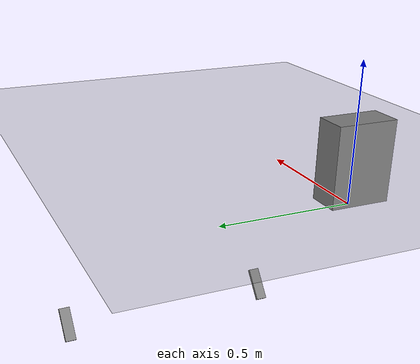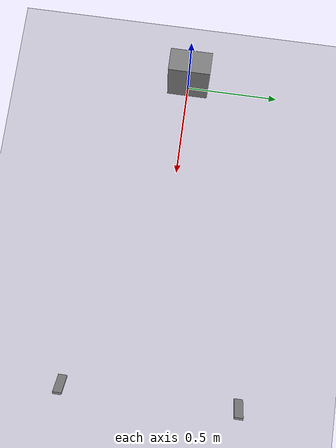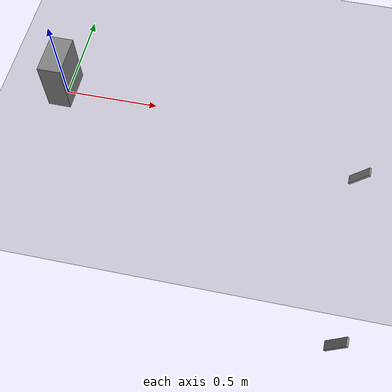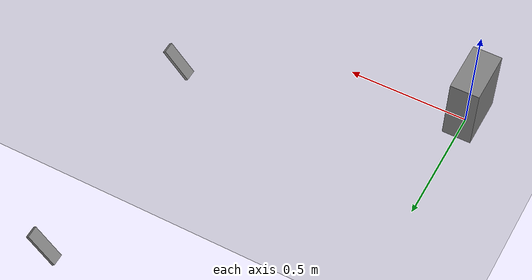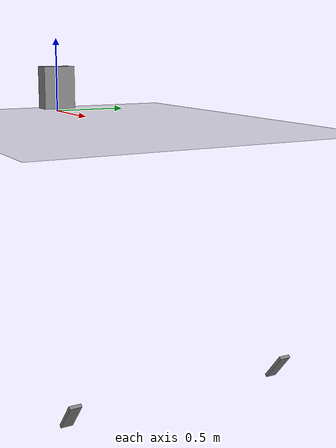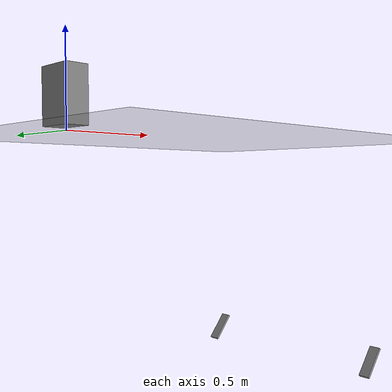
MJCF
<mujoco model="usd_import">
  <compiler angle="radian"/>

  <option timestep="0.005" gravity="0 0 0"/>

  <asset>
    <mesh name="mesh_0" vertex="-0.101555 -0.0327346 0.00925394 0.101555 -0.0327346 0.00925394 -0.101555 0.0327346 0.00925394 0.101555 0.0327346 0.00925394 -0.101555 -0.0327346 -0.00925394 0.101555 -0.0327346 -0.00925394 -0.101555 0.0327346 -0.00925394 0.101555 0.0327346 -0.00925394" face="0 1 3 0 3 2 4 6 7 4 7 5 6 2 3 6 3 7 4 5 1 4 1 0 4 0 2 4 2 6 5 7 3 5 3 1"/>
    <mesh name="mesh_1" vertex="-0.101555 -0.0327346 0.00925394 0.101555 -0.0327346 0.00925394 -0.101555 0.0327346 0.00925394 0.101555 0.0327346 0.00925394 -0.101555 -0.0327346 -0.00925394 0.101555 -0.0327346 -0.00925394 -0.101555 0.0327346 -0.00925394 0.101555 0.0327346 -0.00925394" face="0 1 3 0 3 2 4 6 7 4 7 5 6 2 3 6 3 7 4 5 1 4 1 0 4 0 2 4 2 6 5 7 3 5 3 1"/>
    <mesh name="mesh_2" vertex="-0.06 -0.110109 0.144879 0.06 -0.110109 0.144879 -0.06 0.110109 0.144879 0.06 0.110109 0.144879 -0.06 -0.110109 -0.144879 0.06 -0.110109 -0.144879 -0.06 0.110109 -0.144879 0.06 0.110109 -0.144879" face="0 1 3 0 3 2 4 6 7 4 7 5 6 2 3 6 3 7 4 5 1 4 1 0 4 0 2 4 2 6 5 7 3 5 3 1"/>
  </asset>

  <worldbody>
    <geom name="ground" size="0 0 0.05" type="plane"/>
    <body name="pelvis">
      <inertial pos="0 0 -0.07605" quat="1 0 -0.000405289 0" mass="2.86" diaginertia="0.0079143 0.0069837 0.0059404"/>
      <joint name="pelvis_free" type="free"/>
      <body name="left_hip_pitch_link" pos="0 0.06445 -0.1027" quat="0.984807 0 -0.17365 0">
        <inertial pos="0.001962 0.049392 -0.000941" quat="0.938868 0.343859 -0.00626571 -0.0157501" mass="1.299" diaginertia="0.00138785 0.00086947 0.000955478"/>
        <joint name="left_hip_pitch_joint" range="-2.35 3.05" armature="0.1" axis="0 1 0" limited="true"/>
        <body name="left_hip_roll_link" pos="0 0.11675 -0.1027" quat="0.984807 0 -0.17365 0">
          <inertial pos="0.024757 -0.001036 -0.086323" quat="0.977498 -0.00692636 0.210181 0.0165269" mass="1.446" diaginertia="0.00244106 0.00230425 0.00142899"/>
          <joint name="left_hip_roll_joint" range="-0.26 2.53" armature="0.1" axis="1 0 0" limited="true"/>
          <body name="left_hip_yaw_link" pos="0.0609195 0.115536 -0.212591" quat="0.984807 0 -0.17365 0">
            <inertial pos="-0.053554 -0.011477 -0.14067" quat="0.964959 -0.0305889 0.255236 0.0526523" mass="2.052" diaginertia="0.0107868 0.0114475 0.00214501"/>
            <joint name="left_hip_yaw_joint" range="-2.75 2.75" armature="0.1" limited="true"/>
            <body name="left_knee_link" pos="0.0479644 0.113803 -0.405906" quat="0.99678 0 0.0801793 0">
              <inertial pos="0.005505 0.006534 -0.116629" quat="0.989292 -0.0341654 0.0159371 -0.140995" mass="2.252" diaginertia="0.0124382 0.0127418 0.00192524"/>
              <joint name="left_knee_joint" range="-0.33489 2.5449" armature="0.1" axis="0 1 0" limited="true"/>
              <body name="left_ankle_pitch_link" pos="8.27014e-07 0.117871 -0.702118">
                <inertial pos="-0.007269 0 0.011137" quat="0.972278 0 -0.233828 0" mass="0.074" diaginertia="6.9195e-06 1.89e-05 1.40805e-05"/>
                <joint name="left_ankle_pitch_joint" range="-0.68 0.73" armature="0.1" axis="0 1 0" limited="true"/>
                <body name="left_ankle_roll_link" pos="8.27276e-07 0.117871 -0.719676">
                  <inertial pos="0.024762 2e-05 -0.012526" quat="0.999219 -0.00119687 0.0394858 0.000106036" mass="0.391" diaginertia="0.000149255 0.0010657 0.00110394"/>
                  <joint name="left_ankle_roll_joint" range="-0.2618 0.2618" armature="0.1" axis="1 0 0" limited="true"/>
                  <geom name="Cube" pos="0.035917 0 -0.0251701" quat="1 0 0 0" type="mesh" mesh="mesh_0"/>
                </body>
              </body>
            </body>
          </body>
        </body>
      </body>
      <body name="pelvis_contour_link">
        <inertial pos="-inf -inf -inf" quat="0 0 0 0" mass="1e-06" diaginertia="1e-05 1e-05 1e-05"/>
      </body>
      <body name="right_hip_pitch_link" pos="0 -0.06445 -0.1027" quat="0.984807 0 -0.17365 0">
        <inertial pos="0.001962 -0.049392 -0.000941" quat="0.938868 -0.343859 -0.00626571 0.0157501" mass="1.299" diaginertia="0.00138785 0.00086947 0.000955478"/>
        <joint name="right_hip_pitch_joint" range="-2.35 3.05" armature="0.1" axis="0 1 0" limited="true"/>
        <body name="right_hip_roll_link" pos="0 -0.11675 -0.1027" quat="0.984807 0 -0.17365 0">
          <inertial pos="0.024757 0.001036 -0.086323" quat="0.977498 0.00692636 0.210181 -0.0165269" mass="1.446" diaginertia="0.00244106 0.00230425 0.00142899"/>
          <joint name="right_hip_roll_joint" range="-2.53 0.26" armature="0.1" axis="1 0 0" limited="true"/>
          <body name="right_hip_yaw_link" pos="0.0609195 -0.115536 -0.212591" quat="0.984807 0 -0.17365 0">
            <inertial pos="-0.053554 0.011477 -0.14067" quat="0.964959 0.0305889 0.255236 -0.0526523" mass="2.052" diaginertia="0.0107868 0.0114475 0.00214501"/>
            <joint name="right_hip_yaw_joint" range="-2.75 2.75" armature="0.1" limited="true"/>
            <body name="right_knee_link" pos="0.0479644 -0.113803 -0.405906" quat="0.99678 0 0.0801793 0">
              <inertial pos="0.005505 -0.006534 -0.116629" quat="0.989292 0.0341654 0.0159371 0.140995" mass="2.252" diaginertia="0.0124382 0.0127418 0.00192524"/>
              <joint name="right_knee_joint" range="-0.33489 2.5449" armature="0.1" axis="0 1 0" limited="true"/>
              <body name="right_ankle_pitch_link" pos="8.27014e-07 -0.117871 -0.702118">
                <inertial pos="-0.007269 0 0.011137" quat="0.972278 0 -0.233828 0" mass="0.074" diaginertia="6.9195e-06 1.89e-05 1.40805e-05"/>
                <joint name="right_ankle_pitch_joint" range="-0.68 0.73" armature="0.1" axis="0 1 0" limited="true"/>
                <body name="right_ankle_roll_link" pos="8.27276e-07 -0.117871 -0.719676">
                  <inertial pos="0.024762 -2e-05 -0.012526" quat="0.999219 0.00119687 0.0394858 -0.000106036" mass="0.391" diaginertia="0.000149255 0.0010657 0.00110394"/>
                  <joint name="right_ankle_roll_joint" range="-0.2618 0.2618" armature="0.1" axis="1 0 0" limited="true"/>
                  <geom name="right_ankle_roll_link_Cube" pos="0.035917 0 -0.0251701" quat="1 0 0 0" type="mesh" mesh="mesh_1"/>
                </body>
              </body>
            </body>
          </body>
        </body>
      </body>
      <body name="torso_link">
        <inertial pos="0.00197122 0.00266902 0.169365" quat="0.999768 0.0170278 -0.0129458 -0.00253532" mass="6.3396" diaginertia="0.0603894 0.0435628 0.03337"/>
        <joint name="torso_joint" range="-2.618 2.618" armature="0.1" limited="true"/>
        <geom name="torso_link_Cube" pos="-0.00620253 0 0.164763" type="mesh" mesh="mesh_2"/>
        <body name="head_link">
          <inertial pos="0.00138067 0.000284309 0.420342" quat="0.998756 0.00284651 -0.0451579 -0.0209396" mass="1.17977" diaginertia="0.00546358 0.00552903 0.00162238"/>
        </body>
        <body name="imu_link" pos="-0.0423387 0.00166 0.152067">
          <inertial pos="-inf -inf -inf" quat="0 0 0 0" mass="1e-06" diaginertia="1e-05 1e-05 1e-05"/>
        </body>
        <body name="left_shoulder_pitch_link" pos="-0.0025 0.10396 0.25928" quat="0.990268 0.139172 0 0">
          <inertial pos="-0.001431 0.048811 0.001304" quat="0.97214 -0.140022 -0.16469 -0.0906368" mass="0.713" diaginertia="0.000466421 0.000410999 0.000440181"/>
          <joint name="left_shoulder_pitch_joint" range="-2.9671 2.7925" armature="0.1" axis="0 1 0" limited="true"/>
          <body name="left_shoulder_roll_link" pos="-0.0025 0.153946 0.273613">
            <inertial pos="-0.003415 0.006955 -0.064598" quat="0.999928 0.00338303 0.011517 0.000319462" mass="0.642" diaginertia="0.000616029 0.000683514 0.000372857"/>
            <joint name="left_shoulder_roll_joint" range="-1.5882 2.2515" armature="0.1" axis="1 0 0" limited="true"/>
            <body name="left_shoulder_yaw_link" pos="-0.00604 0.160188 0.170413">
              <inertial pos="0.000375 -0.00444 -0.072374" quat="0.940427 -0.0334272 -0.0194902 -0.337786" mass="0.713" diaginertia="0.000964661 0.000977873 0.000379065"/>
              <joint name="left_shoulder_yaw_joint" range="-2.618 2.618" armature="0.1" limited="true"/>
              <body name="left_elbow_pitch_link" pos="-0.00604 0.162078 0.084913">
                <inertial pos="0.064497 0.002873 0" quat="0.983402 0.000162328 -1.44667e-05 -0.18144" mass="0.601" diaginertia="0.00025371 0.00049549 0.0004712"/>
                <joint name="left_elbow_pitch_joint" range="-0.2268 3.4208" armature="0.1" axis="0 1 0" limited="true"/>
                <body name="left_elbow_roll_link" pos="0.09396 0.162078 0.084913">
                  <inertial pos="0.081811 0.001454 0.001" quat="0.996277 0.0840638 -0.0160999 0.0102844" mass="0.227" diaginertia="0.00010804 0.000977534 0.000968326"/>
                  <joint name="left_elbow_roll_joint" range="-2.0943 2.0943" armature="0.1" axis="1 0 0" limited="true"/>
                  <body name="left_palm_link" pos="0.21396 0.162078 0.084913">
                    <inertial pos="0.0557842 0.00148509 -0.000326701" quat="0.999676 -0.000206426 0.00798934 0.0241723" mass="0.28126" diaginertia="0.000176062 0.000311158 0.000189397"/>
                    <body name="left_five_link" pos="0.29896 0.166078 0.060963">
                      <inertial pos="0.0362561 -0.0015725 0.000269899" quat="0.996487 -0.0836561 0.00228414 -0.00302742" mass="0.0488469" diaginertia="3.8319e-06 8.91742e-06 8.64873e-06"/>
                      <joint name="left_five_joint" range="-1.84 0.3" armature="0.1" limited="true"/>
                      <body name="left_six_link" pos="0.34606 0.162478 0.060963">
                        <inertial pos="0.0237591 0.00135257 0.000119669" quat="0.999361 -0.00591275 0.0160366 0.0313859" mass="0.0138583" diaginertia="9.3995e-07 2.55338e-06 2.04399e-06"/>
                        <joint name="left_six_joint" range="-1.84 0" armature="0.1" limited="true"/>
                      </body>
                    </body>
                    <body name="left_three_link" pos="0.29896 0.166078 0.108863">
                      <inertial pos="0.0362561 -0.0015725 0.000269899" quat="0.996487 -0.0836561 0.00228414 -0.00302742" mass="0.0488469" diaginertia="3.8319e-06 8.91742e-06 8.64873e-06"/>
                      <joint name="left_three_joint" range="-1.84 0.3" armature="0.1" limited="true"/>
                      <body name="left_four_link" pos="0.34606 0.162478 0.108863">
                        <inertial pos="0.0237591 0.00135257 0.000119669" quat="0.999361 -0.00591275 0.0160366 0.0313859" mass="0.0138583" diaginertia="9.3995e-07 2.55338e-06 2.04399e-06"/>
                        <joint name="left_four_joint" range="-1.84 0" armature="0.1" limited="true"/>
                      </body>
                    </body>
                    <body name="left_zero_link" pos="0.26396 0.162078 0.084913">
                      <inertial pos="-0.0260466 -0.00877511 1.08605e-05" quat="0.978311 -0.00398189 -0.00452538 -0.207051" mass="0.0509893" diaginertia="7.23365e-06 4.58058e-06 8.68048e-06"/>
                      <joint name="left_zero_joint" range="-0.523598 0.523598" armature="0.1" axis="0 1 0" limited="true"/>
                      <body name="left_one_link" pos="0.237435 0.143278 0.084863">
                        <inertial pos="-0.00181538 -0.0327057 -0.000185871" quat="0.98984 -0.00243739 0.140057 -0.0243994" mass="0.047762" diaginertia="8.03051e-06 3.65282e-06 7.8455e-06"/>
                        <joint name="left_one_joint" range="-1 1.2" armature="0.1" limited="true"/>
                        <body name="left_two_link" pos="0.237435 0.100178 0.084863">
                          <inertial pos="-0.00135257 -0.0237591 -0.000119669" quat="0.999361 -0.0160366 0.00591276 -0.0313859" mass="0.0138583" diaginertia="2.55338e-06 9.3995e-07 2.04399e-06"/>
                          <joint name="left_two_joint" range="0 1.84" armature="0.1" limited="true"/>
                        </body>
                      </body>
                    </body>
                  </body>
                </body>
              </body>
            </body>
          </body>
        </body>
        <body name="logo_link">
          <inertial pos="-0.00306556 5.62503e-05 0.245265" quat="0.999977 -0.000722056 0.00228719 -0.00632623" mass="0.001" diaginertia="8.95487e-07 6.44935e-06 6.88624e-06"/>
        </body>
        <body name="right_shoulder_pitch_link" pos="-0.0025 -0.10396 0.25928" quat="0.990268 -0.139172 0 0">
          <inertial pos="-0.001431 -0.048811 0.001304" quat="0.97214 0.140022 -0.16469 0.0906368" mass="0.713" diaginertia="0.000466421 0.000410999 0.000440181"/>
          <joint name="right_shoulder_pitch_joint" range="-2.9671 2.7925" armature="0.1" axis="0 1 0" limited="true"/>
          <body name="right_shoulder_roll_link" pos="-0.0025 -0.153946 0.273613">
            <inertial pos="-0.003415 -0.006955 -0.064598" quat="0.999928 -0.00338303 0.011517 -0.000319462" mass="0.642" diaginertia="0.000616029 0.000683514 0.000372857"/>
            <joint name="right_shoulder_roll_joint" range="-2.2515 1.5882" armature="0.1" axis="1 0 0" limited="true"/>
            <body name="right_shoulder_yaw_link" pos="-0.00604 -0.160188 0.170413">
              <inertial pos="0.000375 0.00444 -0.072374" quat="0.940427 0.0334272 -0.0194902 0.337786" mass="0.713" diaginertia="0.000964661 0.000977873 0.000379065"/>
              <joint name="right_shoulder_yaw_joint" range="-2.618 2.618" armature="0.1" limited="true"/>
              <body name="right_elbow_pitch_link" pos="-0.00604 -0.162078 0.084913">
                <inertial pos="0.064497 -0.002873 0" quat="0.983402 -0.000162328 -1.44667e-05 0.18144" mass="0.601" diaginertia="0.00025371 0.00049549 0.0004712"/>
                <joint name="right_elbow_pitch_joint" range="-0.2268 3.4208" armature="0.1" axis="0 1 0" limited="true"/>
                <body name="right_elbow_roll_link" pos="0.09396 -0.162078 0.084913">
                  <inertial pos="0.081811 -0.001454 0.001" quat="0.996277 -0.0840638 -0.0160999 -0.0102844" mass="0.227" diaginertia="0.00010804 0.000977534 0.000968326"/>
                  <joint name="right_elbow_roll_joint" range="-2.0943 2.0943" armature="0.1" axis="1 0 0" limited="true"/>
                  <body name="right_palm_link" pos="0.21396 -0.162078 0.084913">
                    <inertial pos="0.0557842 -0.00148509 -0.000326701" quat="0.999676 0.000206426 0.00798934 -0.0241723" mass="0.28126" diaginertia="0.000176062 0.000311158 0.000189397"/>
                    <body name="right_five_link" pos="0.29896 -0.166078 0.060963">
                      <inertial pos="0.0362561 0.0015725 0.000269899" quat="0.996487 0.0836561 0.00228414 0.00302742" mass="0.0488469" diaginertia="3.8319e-06 8.91742e-06 8.64873e-06"/>
                      <joint name="right_five_joint" range="-0.3 1.84" armature="0.1" limited="true"/>
                      <body name="right_six_link" pos="0.34606 -0.162478 0.060963">
                        <inertial pos="0.0237591 -0.00135257 0.000119669" quat="0.999361 0.00591275 0.0160366 -0.0313859" mass="0.0138583" diaginertia="9.3995e-07 2.55338e-06 2.04399e-06"/>
                        <joint name="right_six_joint" range="0 1.84" armature="0.1" limited="true"/>
                      </body>
                    </body>
                    <body name="right_three_link" pos="0.29896 -0.166078 0.108863">
                      <inertial pos="0.0362561 0.0015725 0.000269899" quat="0.996487 0.0836561 0.00228414 0.00302742" mass="0.0488469" diaginertia="3.8319e-06 8.91742e-06 8.64873e-06"/>
                      <joint name="right_three_joint" range="-0.3 1.84" armature="0.1" limited="true"/>
                      <body name="right_four_link" pos="0.34606 -0.162478 0.108863">
                        <inertial pos="0.0237591 -0.00135257 0.000119669" quat="0.999361 0.00591275 0.0160366 -0.0313859" mass="0.0138583" diaginertia="9.3995e-07 2.55338e-06 2.04399e-06"/>
                        <joint name="right_four_joint" range="0 1.84" armature="0.1" limited="true"/>
                      </body>
                    </body>
                    <body name="right_zero_link" pos="0.26396 -0.162078 0.084913">
                      <inertial pos="-0.0260466 0.00877511 1.08605e-05" quat="0.978311 0.00398189 -0.00452538 0.207051" mass="0.0509893" diaginertia="7.23365e-06 4.58058e-06 8.68048e-06"/>
                      <joint name="right_zero_joint" range="-0.523598 0.523598" armature="0.1" axis="0 1 0" limited="true"/>
                      <body name="right_one_link" pos="0.237435 -0.143278 0.084863">
                        <inertial pos="-0.00181538 0.0327057 -0.000185871" quat="0.98984 0.00243739 0.140057 0.0243994" mass="0.047762" diaginertia="8.03051e-06 3.65282e-06 7.8455e-06"/>
                        <joint name="right_one_joint" range="-1.2 1" armature="0.1" limited="true"/>
                        <body name="right_two_link" pos="0.237435 -0.100178 0.084863">
                          <inertial pos="-0.00135257 0.0237591 -0.000119669" quat="0.999361 0.0160366 0.00591276 0.0313859" mass="0.0138583" diaginertia="2.55338e-06 9.3995e-07 2.04399e-06"/>
                          <joint name="right_two_joint" range="-1.84 0" armature="0.1" limited="true"/>
                        </body>
                      </body>
                    </body>
                  </body>
                </body>
              </body>
            </body>
          </body>
        </body>
      </body>
    </body>
  </worldbody>

  <actuator>
    <general name="left_hip_pitch_joint" joint="left_hip_pitch_joint" ctrlrange="-2.35 3.05" ctrllimited="true" forcelimited="true" forcerange="-88 88" biastype="affine" gainprm="5729.58" biasprm="0 -5729.58"/>
    <general name="left_hip_roll_joint" joint="left_hip_roll_joint" ctrlrange="-0.26 2.53" ctrllimited="true" forcelimited="true" forcerange="-88 88" biastype="affine" gainprm="5729.58" biasprm="0 -5729.58"/>
    <general name="left_hip_yaw_joint" joint="left_hip_yaw_joint" ctrlrange="-2.75 2.75" ctrllimited="true" forcelimited="true" forcerange="-88 88" biastype="affine" gainprm="5729.58" biasprm="0 -5729.58"/>
    <general name="left_knee_joint" joint="left_knee_joint" ctrlrange="-0.33489 2.5449" ctrllimited="true" forcelimited="true" forcerange="-139 139" biastype="affine" gainprm="5729.58" biasprm="0 -5729.58"/>
    <general name="left_ankle_pitch_joint" joint="left_ankle_pitch_joint" ctrlrange="-0.68 0.73" ctrllimited="true" forcelimited="true" forcerange="-40 40" biastype="affine" gainprm="5729.58" biasprm="0 -5729.58"/>
    <general name="left_ankle_roll_joint" joint="left_ankle_roll_joint" ctrlrange="-0.2618 0.2618" ctrllimited="true" forcelimited="true" forcerange="-40 40" biastype="affine" gainprm="5729.58" biasprm="0 -5729.58"/>
    <general name="right_hip_pitch_joint" joint="right_hip_pitch_joint" ctrlrange="-2.35 3.05" ctrllimited="true" forcelimited="true" forcerange="-88 88" biastype="affine" gainprm="5729.58" biasprm="0 -5729.58"/>
    <general name="right_hip_roll_joint" joint="right_hip_roll_joint" ctrlrange="-2.53 0.26" ctrllimited="true" forcelimited="true" forcerange="-88 88" biastype="affine" gainprm="5729.58" biasprm="0 -5729.58"/>
    <general name="right_hip_yaw_joint" joint="right_hip_yaw_joint" ctrlrange="-2.75 2.75" ctrllimited="true" forcelimited="true" forcerange="-88 88" biastype="affine" gainprm="5729.58" biasprm="0 -5729.58"/>
    <general name="right_knee_joint" joint="right_knee_joint" ctrlrange="-0.33489 2.5449" ctrllimited="true" forcelimited="true" forcerange="-139 139" biastype="affine" gainprm="5729.58" biasprm="0 -5729.58"/>
    <general name="right_ankle_pitch_joint" joint="right_ankle_pitch_joint" ctrlrange="-0.68 0.73" ctrllimited="true" forcelimited="true" forcerange="-40 40" biastype="affine" gainprm="5729.58" biasprm="0 -5729.58"/>
    <general name="right_ankle_roll_joint" joint="right_ankle_roll_joint" ctrlrange="-0.2618 0.2618" ctrllimited="true" forcelimited="true" forcerange="-40 40" biastype="affine" gainprm="5729.58" biasprm="0 -5729.58"/>
    <general name="torso_joint" joint="torso_joint" ctrlrange="-2.618 2.618" ctrllimited="true" forcelimited="true" forcerange="-88 88" biastype="affine" gainprm="5729.58" biasprm="0 -5729.58"/>
    <general name="left_shoulder_pitch_joint" joint="left_shoulder_pitch_joint" ctrlrange="-2.9671 2.7925" ctrllimited="true" forcelimited="true" forcerange="-21 21" biastype="affine" gainprm="5729.58" biasprm="0 -5729.58"/>
    <general name="left_shoulder_roll_joint" joint="left_shoulder_roll_joint" ctrlrange="-1.5882 2.2515" ctrllimited="true" forcelimited="true" forcerange="-21 21" biastype="affine" gainprm="5729.58" biasprm="0 -5729.58"/>
    <general name="left_shoulder_yaw_joint" joint="left_shoulder_yaw_joint" ctrlrange="-2.618 2.618" ctrllimited="true" forcelimited="true" forcerange="-21 21" biastype="affine" gainprm="5729.58" biasprm="0 -5729.58"/>
    <general name="left_elbow_pitch_joint" joint="left_elbow_pitch_joint" ctrlrange="-0.2268 3.4208" ctrllimited="true" forcelimited="true" forcerange="-21 21" biastype="affine" gainprm="5729.58" biasprm="0 -5729.58"/>
    <general name="left_elbow_roll_joint" joint="left_elbow_roll_joint" ctrlrange="-2.0943 2.0943" ctrllimited="true" forcelimited="true" forcerange="-21 21" biastype="affine" gainprm="5729.58" biasprm="0 -5729.58"/>
    <general name="left_five_joint" joint="left_five_joint" ctrlrange="-1.84 0.3" ctrllimited="true" forcelimited="true" forcerange="-0.7 0.7" biastype="affine" gainprm="5729.58" biasprm="0 -5729.58"/>
    <general name="left_six_joint" joint="left_six_joint" ctrlrange="-1.84 0" ctrllimited="true" forcelimited="true" forcerange="-0.7 0.7" biastype="affine" gainprm="5729.58" biasprm="0 -5729.58"/>
    <general name="left_three_joint" joint="left_three_joint" ctrlrange="-1.84 0.3" ctrllimited="true" forcelimited="true" forcerange="-0.7 0.7" biastype="affine" gainprm="5729.58" biasprm="0 -5729.58"/>
    <general name="left_four_joint" joint="left_four_joint" ctrlrange="-1.84 0" ctrllimited="true" forcelimited="true" forcerange="-0.7 0.7" biastype="affine" gainprm="5729.58" biasprm="0 -5729.58"/>
    <general name="left_zero_joint" joint="left_zero_joint" ctrlrange="-0.523598 0.523598" ctrllimited="true" forcelimited="true" forcerange="-0.7 0.7" biastype="affine" gainprm="5729.58" biasprm="0 -5729.58"/>
    <general name="left_one_joint" joint="left_one_joint" ctrlrange="-1 1.2" ctrllimited="true" forcelimited="true" forcerange="-0.7 0.7" biastype="affine" gainprm="5729.58" biasprm="0 -5729.58"/>
    <general name="left_two_joint" joint="left_two_joint" ctrlrange="0 1.84" ctrllimited="true" forcelimited="true" forcerange="-0.7 0.7" biastype="affine" gainprm="5729.58" biasprm="0 -5729.58"/>
    <general name="right_shoulder_pitch_joint" joint="right_shoulder_pitch_joint" ctrlrange="-2.9671 2.7925" ctrllimited="true" forcelimited="true" forcerange="-21 21" biastype="affine" gainprm="5729.58" biasprm="0 -5729.58"/>
    <general name="right_shoulder_roll_joint" joint="right_shoulder_roll_joint" ctrlrange="-2.2515 1.5882" ctrllimited="true" forcelimited="true" forcerange="-21 21" biastype="affine" gainprm="5729.58" biasprm="0 -5729.58"/>
    <general name="right_shoulder_yaw_joint" joint="right_shoulder_yaw_joint" ctrlrange="-2.618 2.618" ctrllimited="true" forcelimited="true" forcerange="-21 21" biastype="affine" gainprm="5729.58" biasprm="0 -5729.58"/>
    <general name="right_elbow_pitch_joint" joint="right_elbow_pitch_joint" ctrlrange="-0.2268 3.4208" ctrllimited="true" forcelimited="true" forcerange="-21 21" biastype="affine" gainprm="5729.58" biasprm="0 -5729.58"/>
    <general name="right_elbow_roll_joint" joint="right_elbow_roll_joint" ctrlrange="-2.0943 2.0943" ctrllimited="true" forcelimited="true" forcerange="-21 21" biastype="affine" gainprm="5729.58" biasprm="0 -5729.58"/>
    <general name="right_five_joint" joint="right_five_joint" ctrlrange="-0.3 1.84" ctrllimited="true" forcelimited="true" forcerange="-0.7 0.7" biastype="affine" gainprm="5729.58" biasprm="0 -5729.58"/>
    <general name="right_six_joint" joint="right_six_joint" ctrlrange="0 1.84" ctrllimited="true" forcelimited="true" forcerange="-0.7 0.7" biastype="affine" gainprm="5729.58" biasprm="0 -5729.58"/>
    <general name="right_three_joint" joint="right_three_joint" ctrlrange="-0.3 1.84" ctrllimited="true" forcelimited="true" forcerange="-0.7 0.7" biastype="affine" gainprm="5729.58" biasprm="0 -5729.58"/>
    <general name="right_four_joint" joint="right_four_joint" ctrlrange="0 1.84" ctrllimited="true" forcelimited="true" forcerange="-0.7 0.7" biastype="affine" gainprm="5729.58" biasprm="0 -5729.58"/>
    <general name="right_zero_joint" joint="right_zero_joint" ctrlrange="-0.523598 0.523598" ctrllimited="true" forcelimited="true" forcerange="-0.7 0.7" biastype="affine" gainprm="5729.58" biasprm="0 -5729.58"/>
    <general name="right_one_joint" joint="right_one_joint" ctrlrange="-1.2 1" ctrllimited="true" forcelimited="true" forcerange="-0.7 0.7" biastype="affine" gainprm="5729.58" biasprm="0 -5729.58"/>
    <general name="right_two_joint" joint="right_two_joint" ctrlrange="-1.84 0" ctrllimited="true" forcelimited="true" forcerange="-0.7 0.7" biastype="affine" gainprm="5729.58" biasprm="0 -5729.58"/>
  </actuator>
</mujoco>
